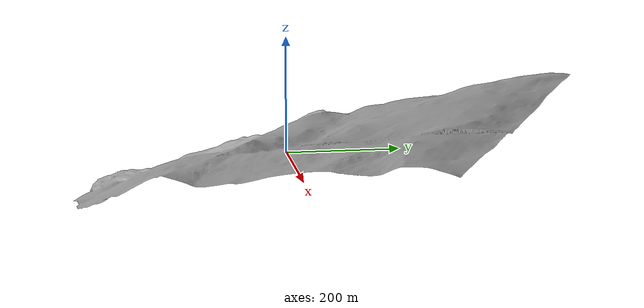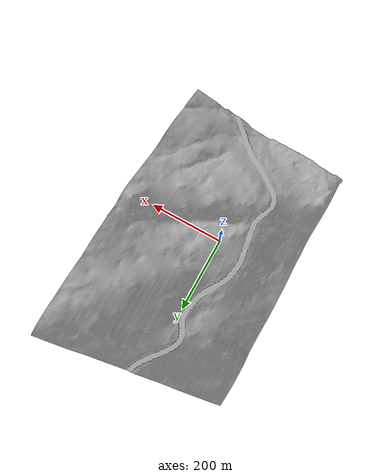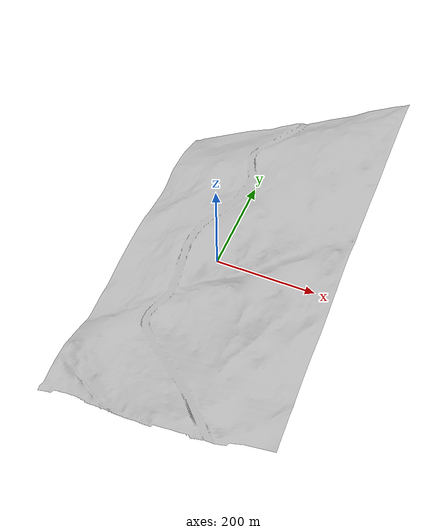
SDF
<?xml version="1.0"?>
<sdf version="1.9">
  <world name="drdo_world1">

    <!-- ===================== gz-sim systems ===================== -->
    <!-- Gazebo Classic loaded these implicitly. gz-sim needs them declared. -->
    <plugin filename="gz-sim-physics-system" name="gz::sim::systems::Physics"></plugin>
    <plugin filename="gz-sim-user-commands-system" name="gz::sim::systems::UserCommands"></plugin>
    <plugin filename="gz-sim-scene-broadcaster-system" name="gz::sim::systems::SceneBroadcaster"></plugin>
    <plugin filename="gz-sim-sensors-system" name="gz::sim::systems::Sensors">
      <render_engine>ogre2</render_engine>
    </plugin>
    <plugin filename="gz-sim-imu-system" name="gz::sim::systems::Imu"></plugin>
    <plugin filename="gz-sim-air-pressure-system" name="gz::sim::systems::AirPressure"></plugin>
    <plugin filename="gz-sim-magnetometer-system" name="gz::sim::systems::Magnetometer"></plugin>
    <plugin filename="gz-sim-navsat-system" name="gz::sim::systems::NavSat"></plugin>
    <plugin filename="gz-sim-contact-system" name="gz::sim::systems::Contact"></plugin>

    <!-- ===================== environment (unchanged from source) ===================== -->
    <light name="sun" type="directional">
      <cast_shadows>true</cast_shadows>
      <pose>0 0 10 0 0 0</pose>
      <diffuse>0.8 0.8 0.8 1</diffuse>
      <specular>0.2 0.2 0.2 1</specular>
      <attenuation>
        <range>1000</range>
        <constant>0.9</constant>
        <linear>0.01</linear>
        <quadratic>0.001</quadratic>
      </attenuation>
      <direction>-0.5 0.1 -0.9</direction>
    </light>

    <include>
      <uri>model://world1</uri>
      <!-- original repo applied an extra 1e-6 scale on top of the 50x scale
           already baked into world1/model.sdf. Kept identical to source. -->
    </include>

    <gravity>0 0 -9.8</gravity>
    <magnetic_field>6e-06 2.3e-05 -4.2e-05</magnetic_field>
    <atmosphere type="adiabatic"/>

    <physics name="default_physics" default="0" type="ode">
      <max_step_size>0.004</max_step_size>
      <real_time_factor>1</real_time_factor>
      <real_time_update_rate>250</real_time_update_rate>
    </physics>

    <scene>
      <ambient>0.4 0.4 0.4 1</ambient>
      <background>0.7 0.7 0.7 1</background>
      <shadows>true</shadows>
    </scene>

    <wind/>

    <spherical_coordinates>
      <surface_model>EARTH_WGS84</surface_model>
      <latitude_deg>0</latitude_deg>
      <longitude_deg>0</longitude_deg>
      <elevation>0</elevation>
      <heading_deg>0</heading_deg>
      <!-- NOTE: if ArduPilot SITL needs a real GPS home matching the
           terrain's geo-referenced origin, set lat/lon/elevation here to
           match your AP_HOME / SIM_ params instead of 0,0,0. -->
    </spherical_coordinates>

    <!-- ===================== gz-sim GUI ===================== -->
    <gui fullscreen="false">
      <plugin filename="MinimalScene" name="3D View">
        <gz-gui>
          <title>3D View</title>
          <property type="bool" key="showTitleBar">false</property>
          <property type="string" key="state">docked</property>
        </gz-gui>
        <engine>ogre2</engine>
        <scene>scene</scene>
        <ambient_light>0.4 0.4 0.4</ambient_light>
        <background_color>0.7 0.7 0.7</background_color>
        <camera_pose>0.799901 327.272 41.305 0 0.54 -2.23003</camera_pose>
      </plugin>
      <plugin filename="GzSceneManager" name="Scene Manager">
        <gz-gui><property key="resizable" type="bool">false</property><property key="width" type="double">5</property><property key="height" type="double">5</property><property key="state" type="string">floating</property><property key="showTitleBar" type="bool">false</property></gz-gui>
      </plugin>
      <plugin filename="InteractiveViewControl" name="Interactive view control">
        <gz-gui><property key="resizable" type="bool">false</property><property key="width" type="double">5</property><property key="height" type="double">5</property><property key="state" type="string">floating</property><property key="showTitleBar" type="bool">false</property></gz-gui>
      </plugin>
      <plugin filename="CameraTracking" name="Camera Tracking">
        <gz-gui><property key="resizable" type="bool">false</property><property key="width" type="double">5</property><property key="height" type="double">5</property><property key="state" type="string">floating</property><property key="showTitleBar" type="bool">false</property></gz-gui>
      </plugin>
      <plugin filename="WorldControl" name="World control">
        <gz-gui>
          <title>World control</title>
          <property type="bool" key="showTitleBar">false</property>
          <property type="bool" key="resizable">false</property>
          <property type="double" key="height">72</property>
          <property type="double" key="width">121</property>
          <property type="double" key="z">1</property>
          <property type="string" key="state">floating</property>
          <anchors target="3D View">
            <line own="left" target="left"/>
            <line own="bottom" target="bottom"/>
          </anchors>
        </gz-gui>
        <play_pause>true</play_pause>
        <step>true</step>
        <start_paused>true</start_paused>
      </plugin>
      <plugin filename="WorldStats" name="World stats">
        <gz-gui>
          <title>World stats</title>
          <property type="bool" key="showTitleBar">false</property>
          <property type="bool" key="resizable">false</property>
          <property type="double" key="height">110</property>
          <property type="double" key="width">290</property>
          <property type="double" key="z">1</property>
          <property type="string" key="state">floating</property>
          <anchors target="3D View">
            <line own="right" target="right"/>
            <line own="bottom" target="bottom"/>
          </anchors>
        </gz-gui>
        <sim_time>true</sim_time>
        <real_time>true</real_time>
        <real_time_factor>true</real_time_factor>
        <iterations>true</iterations>
      </plugin>
      <plugin filename="EntityContextMenuPlugin" name="Entity context menu"></plugin>
      <plugin filename="SelectEntities" name="Select entities"></plugin>
      <plugin filename="VisualizationCapabilities" name="Visualization capabilities"></plugin>
      <plugin filename="Spawn" name="Spawn entities"></plugin>
    </gui>

    <!-- ===================== UAV / UGV ===================== -->

  </world>
</sdf>

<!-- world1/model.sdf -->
<sdf version='1.6'>
  <model name='terrain'>
    <static>1</static>
    <link name='link'>
      <collision name='collision'><geometry><mesh><scale>50 50 50</scale><uri>model://world1/meshes/terrain_raster.dae</uri></mesh></geometry></collision>
      <visual name='visual'>
        <cast_shadows>0</cast_shadows>
        <geometry>
          <mesh>
            <scale>50 50 50</scale>
            <uri>model://world1/meshes/terrain_raster.dae</uri>
          </mesh>
        </geometry>
      </visual>
      <self_collide>0</self_collide>
      <enable_wind>0</enable_wind>
      <kinematic>0</kinematic>
    </link>
  </model>
</sdf>
